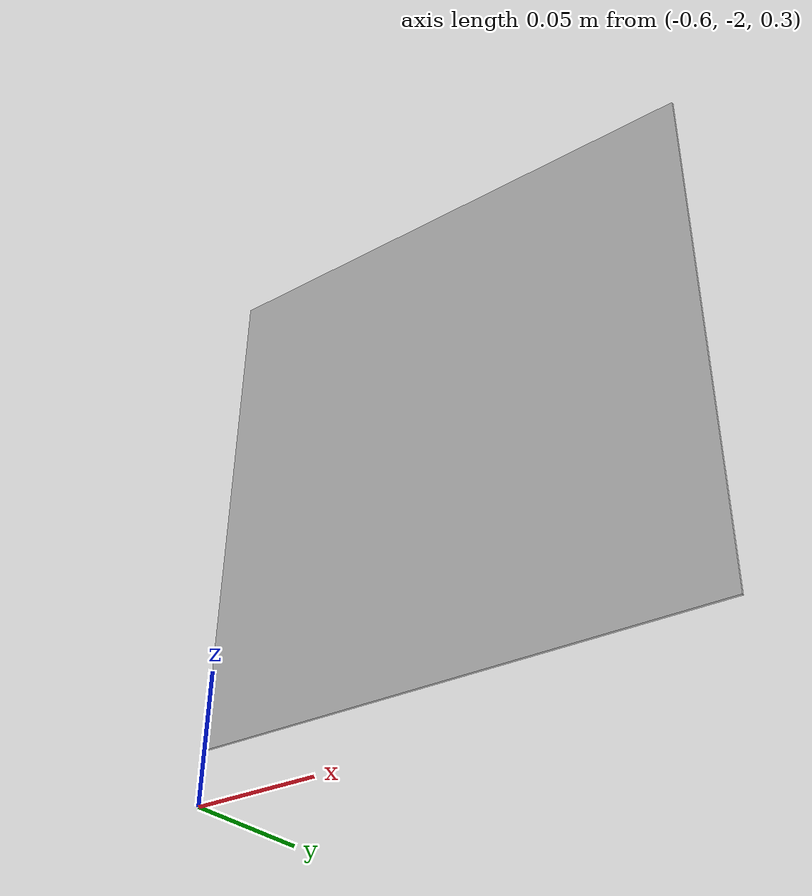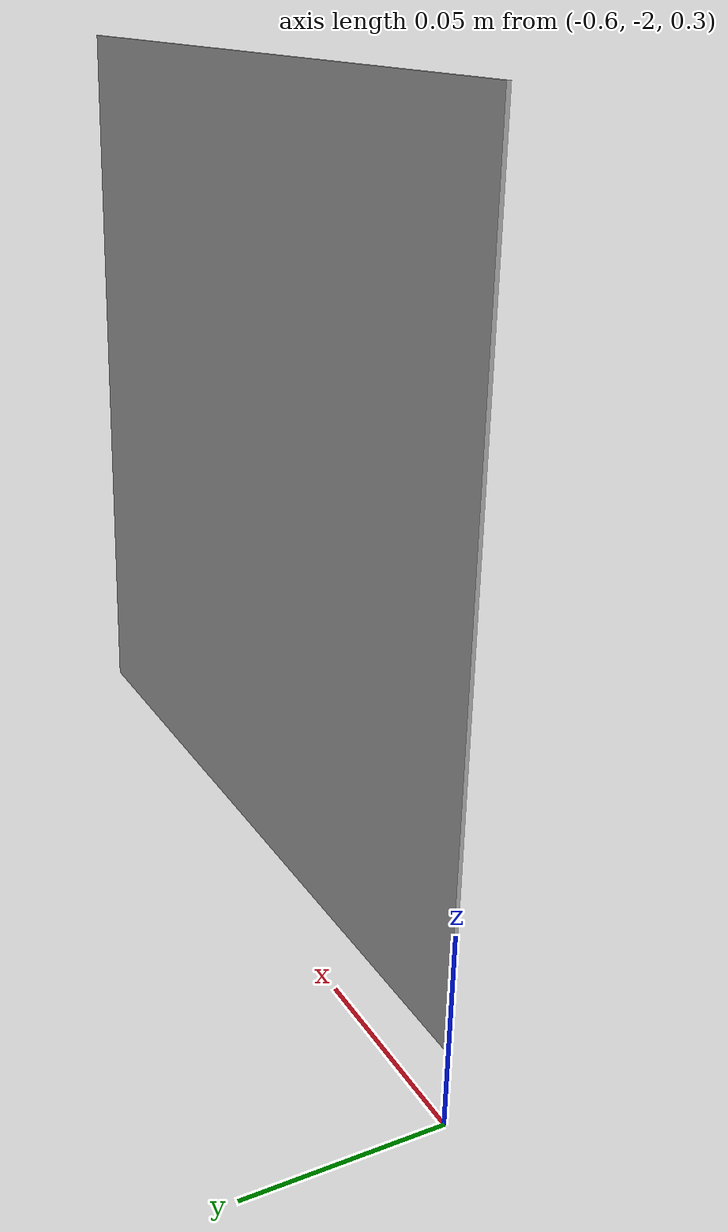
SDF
<?xml version="1.0" encoding="UTF-8"?>
<sdf version="1.4">
   <model name="aruco_2_99">
      <static>true</static>
      <link name="aruco_2_99_link">

      <visual name="visual_marker_2_0">
         <pose>-0.5 -2.0 0.42 1.57079632679 1.57079632679 0</pose>
         <cast_shadows>false</cast_shadows>
         <geometry>
            <box>
                  <size>0.2 0.2 1e-3</size>
            </box>
         </geometry>
         <material>
            <script>
                  <uri>model://aruco_cmit_txt/materials/scripts</uri>
                  <uri>model://aruco_cmit_txt/materials/textures</uri>
                  <name>aruco/marker_2_0</name>
            </script>
         </material>
      </visual>

      </link>
   </model>
</sdf>
